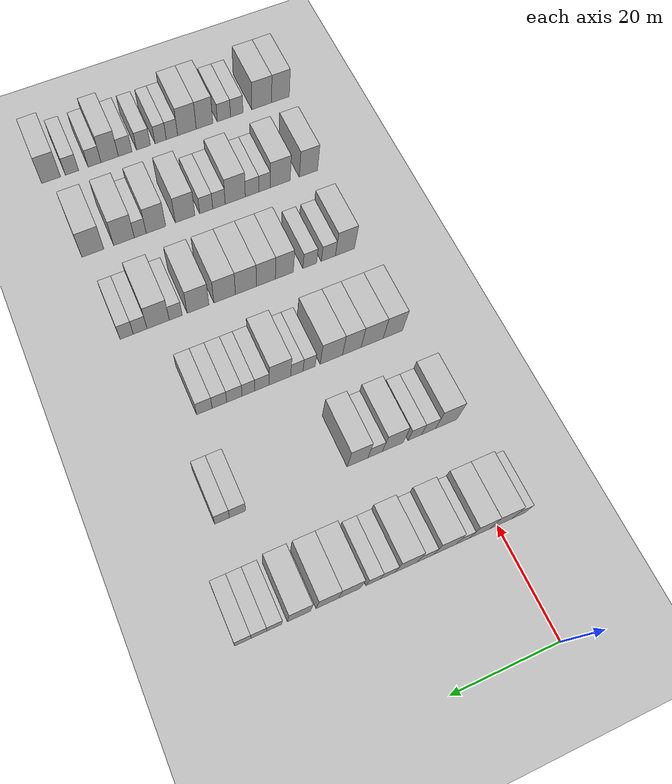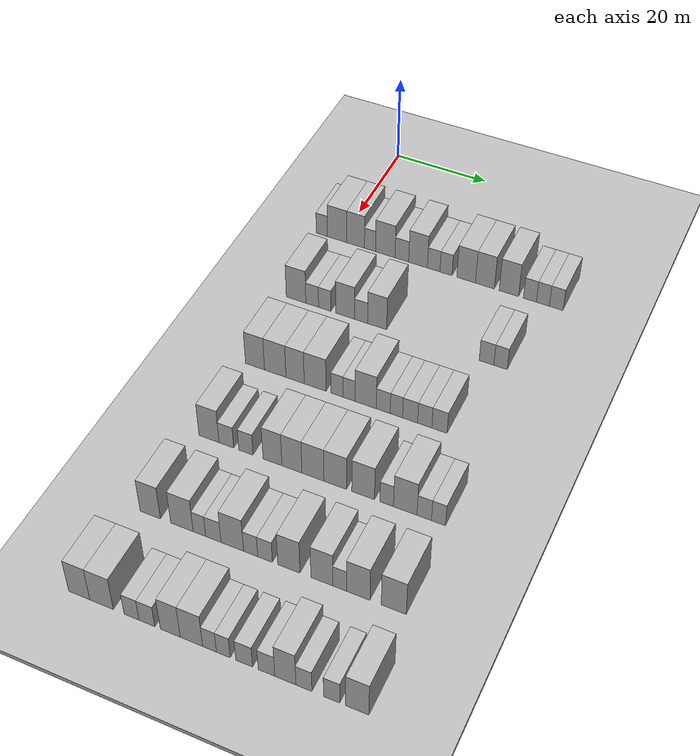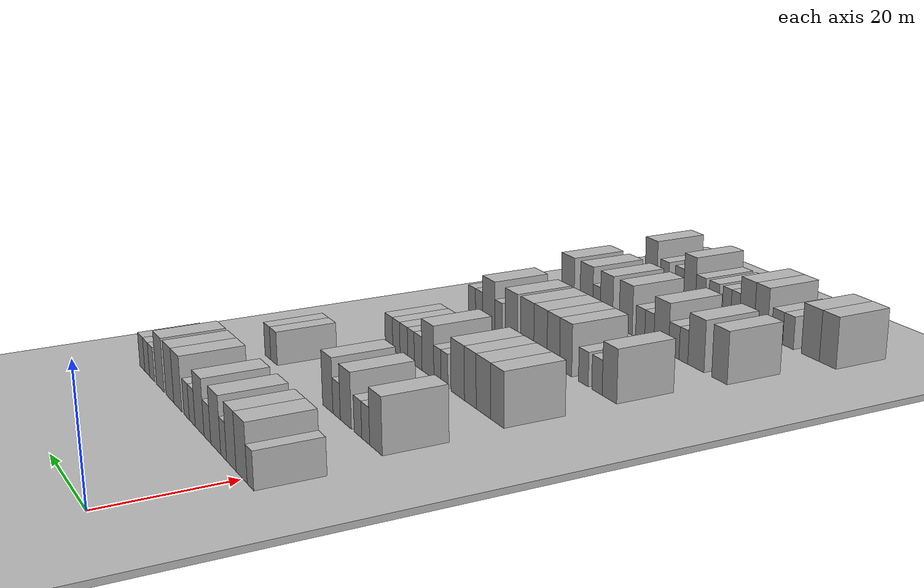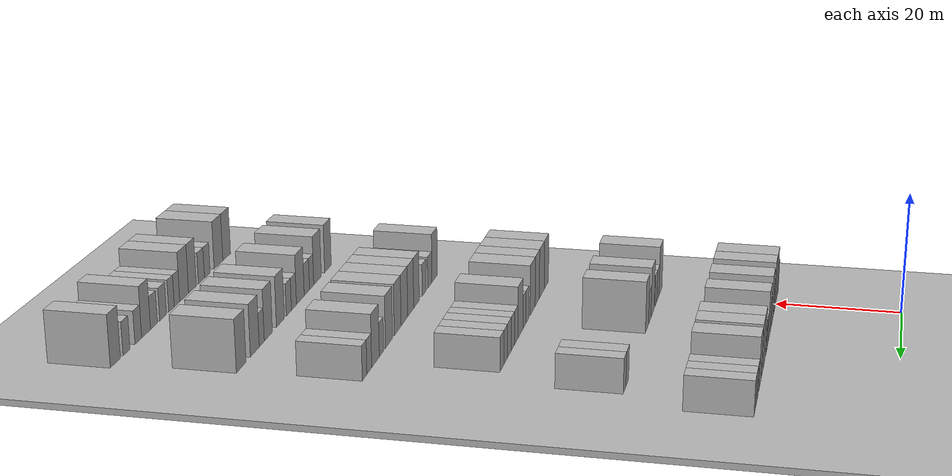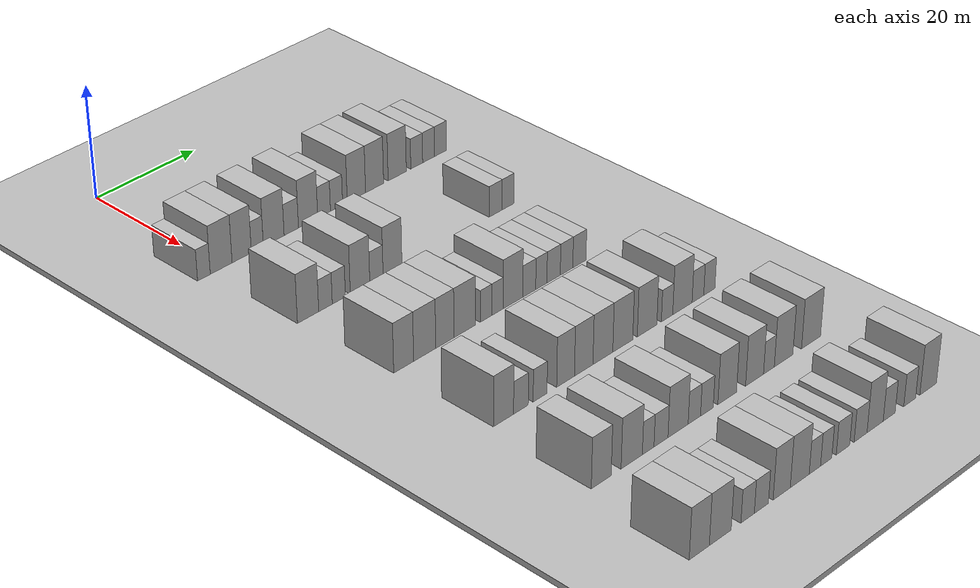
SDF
<sdf version="1.6">
 <world name="default">
  <include><name>ground_plane_1</name><uri>model://HANNAS_ground_plane</uri></include>
  <include>
   <name>ground_plane_2</name>
   <uri>model://HANNAS_ground_plane</uri>
   <pose>100 0 0  0 0 0</pose>
  </include>
  <model name="building_90">
   <static>1</static>
   <pose>25.0000 -3.9394 0 0.000000 0.000000 0.000000</pose>
   <link name="link">
    <pose>0 0 3.00 0 0 0</pose>
    <collision name="collision"><geometry><box><size>10.0000 2.5096 6.0000</size></box></geometry></collision>
    <visual name="visual">
     <cast_shadows>0</cast_shadows>
     <geometry><box><size>10.0000 2.5096 6.0000</size></box></geometry>
     <material>
      <script>
       <uri>model://HANNAS_wall/materials/scripts</uri>
       <uri>model://HANNAS_wall/materials/textures</uri>
       <name>vrc/HANNAS_wall</name>
      </script>
     </material>
    </visual>
   </link>
  </model>
  <model name="building_91">
   <static>1</static>
   <pose>25.0000 -0.5141 0 0.000000 0.000000 0.000000</pose>
   <link name="link">
    <pose>0 0 4.50 0 0 0</pose>
    <collision name="collision"><geometry><box><size>10.0000 4.3411 9.0000</size></box></geometry></collision>
    <visual name="visual">
     <cast_shadows>0</cast_shadows>
     <geometry><box><size>10.0000 4.3411 9.0000</size></box></geometry>
     <material>
      <script>
       <uri>model://HANNAS_wall/materials/scripts</uri>
       <uri>model://HANNAS_wall/materials/textures</uri>
       <name>vrc/HANNAS_wall</name>
      </script>
     </material>
    </visual>
   </link>
  </model>
  <model name="building_92">
   <static>1</static>
   <pose>25.0000 3.6046 0 0.000000 0.000000 0.000000</pose>
   <link name="link">
    <pose>0 0 4.50 0 0 0</pose>
    <collision name="collision"><geometry><box><size>10.0000 3.8961 9.0000</size></box></geometry></collision>
    <visual name="visual">
     <cast_shadows>0</cast_shadows>
     <geometry><box><size>10.0000 3.8961 9.0000</size></box></geometry>
     <material>
      <script>
       <uri>model://HANNAS_wall/materials/scripts</uri>
       <uri>model://HANNAS_wall/materials/textures</uri>
       <name>vrc/HANNAS_wall</name>
      </script>
     </material>
    </visual>
   </link>
  </model>
  <model name="building_93">
   <static>1</static>
   <pose>25.0000 6.7728 0 0.000000 0.000000 0.000000</pose>
   <link name="link">
    <pose>0 0 3.00 0 0 0</pose>
    <collision name="collision"><geometry><box><size>10.0000 2.4404 6.0000</size></box></geometry></collision>
    <visual name="visual">
     <cast_shadows>0</cast_shadows>
     <geometry><box><size>10.0000 2.4404 6.0000</size></box></geometry>
     <material>
      <script>
       <uri>model://HANNAS_wall/materials/scripts</uri>
       <uri>model://HANNAS_wall/materials/textures</uri>
       <name>vrc/HANNAS_wall</name>
      </script>
     </material>
    </visual>
   </link>
  </model>
  <model name="building_94">
   <static>1</static>
   <pose>25.0000 10.1260 0 0.000000 0.000000 0.000000</pose>
   <link name="link">
    <pose>0 0 4.50 0 0 0</pose>
    <collision name="collision"><geometry><box><size>10.0000 4.2659 9.0000</size></box></geometry></collision>
    <visual name="visual">
     <cast_shadows>0</cast_shadows>
     <geometry><box><size>10.0000 4.2659 9.0000</size></box></geometry>
     <material>
      <script>
       <uri>model://HANNAS_wall/materials/scripts</uri>
       <uri>model://HANNAS_wall/materials/textures</uri>
       <name>vrc/HANNAS_wall</name>
      </script>
     </material>
    </visual>
   </link>
  </model>
  <model name="building_95">
   <static>1</static>
   <pose>25.0000 13.7506 0 0.000000 0.000000 0.000000</pose>
   <link name="link">
    <pose>0 0 3.00 0 0 0</pose>
    <collision name="collision"><geometry><box><size>10.0000 2.9834 6.0000</size></box></geometry></collision>
    <visual name="visual">
     <cast_shadows>0</cast_shadows>
     <geometry><box><size>10.0000 2.9834 6.0000</size></box></geometry>
     <material>
      <script>
       <uri>model://HANNAS_wall/materials/scripts</uri>
       <uri>model://HANNAS_wall/materials/textures</uri>
       <name>vrc/HANNAS_wall</name>
      </script>
     </material>
    </visual>
   </link>
  </model>
  <model name="building_96">
   <static>1</static>
   <pose>25.0000 17.2656 0 0.000000 0.000000 0.000000</pose>
   <link name="link">
    <pose>0 0 4.50 0 0 0</pose>
    <collision name="collision"><geometry><box><size>10.0000 4.0464 9.0000</size></box></geometry></collision>
    <visual name="visual">
     <cast_shadows>0</cast_shadows>
     <geometry><box><size>10.0000 4.0464 9.0000</size></box></geometry>
     <material>
      <script>
       <uri>model://HANNAS_wall/materials/scripts</uri>
       <uri>model://HANNAS_wall/materials/textures</uri>
       <name>vrc/HANNAS_wall</name>
      </script>
     </material>
    </visual>
   </link>
  </model>
  <model name="building_97">
   <static>1</static>
   <pose>25.0000 20.6417 0 0.000000 0.000000 0.000000</pose>
   <link name="link">
    <pose>0 0 3.00 0 0 0</pose>
    <collision name="collision"><geometry><box><size>10.0000 2.7059 6.0000</size></box></geometry></collision>
    <visual name="visual">
     <cast_shadows>0</cast_shadows>
     <geometry><box><size>10.0000 2.7059 6.0000</size></box></geometry>
     <material>
      <script>
       <uri>model://HANNAS_wall/materials/scripts</uri>
       <uri>model://HANNAS_wall/materials/textures</uri>
       <name>vrc/HANNAS_wall</name>
      </script>
     </material>
    </visual>
   </link>
  </model>
  <model name="building_98">
   <static>1</static>
   <pose>25.0000 23.2923 0 0.000000 0.000000 0.000000</pose>
   <link name="link">
    <pose>0 0 3.00 0 0 0</pose>
    <collision name="collision"><geometry><box><size>10.0000 2.5952 6.0000</size></box></geometry></collision>
    <visual name="visual">
     <cast_shadows>0</cast_shadows>
     <geometry><box><size>10.0000 2.5952 6.0000</size></box></geometry>
     <material>
      <script>
       <uri>model://HANNAS_wall/materials/scripts</uri>
       <uri>model://HANNAS_wall/materials/textures</uri>
       <name>vrc/HANNAS_wall</name>
      </script>
     </material>
    </visual>
   </link>
  </model>
  <model name="building_99">
   <static>1</static>
   <pose>25.0000 27.5740 0 0.000000 0.000000 0.000000</pose>
   <link name="link">
    <pose>0 0 4.50 0 0 0</pose>
    <collision name="collision"><geometry><box><size>10.0000 3.9682 9.0000</size></box></geometry></collision>
    <visual name="visual">
     <cast_shadows>0</cast_shadows>
     <geometry><box><size>10.0000 3.9682 9.0000</size></box></geometry>
     <material>
      <script>
       <uri>model://HANNAS_wall/materials/scripts</uri>
       <uri>model://HANNAS_wall/materials/textures</uri>
       <name>vrc/HANNAS_wall</name>
      </script>
     </material>
    </visual>
   </link>
  </model>
  <model name="building_100">
   <static>1</static>
   <pose>25.0000 31.5337 0 0.000000 0.000000 0.000000</pose>
   <link name="link">
    <pose>0 0 4.50 0 0 0</pose>
    <collision name="collision"><geometry><box><size>10.0000 3.9510 9.0000</size></box></geometry></collision>
    <visual name="visual">
     <cast_shadows>0</cast_shadows>
     <geometry><box><size>10.0000 3.9510 9.0000</size></box></geometry>
     <material>
      <script>
       <uri>model://HANNAS_wall/materials/scripts</uri>
       <uri>model://HANNAS_wall/materials/textures</uri>
       <name>vrc/HANNAS_wall</name>
      </script>
     </material>
    </visual>
   </link>
  </model>
  <model name="building_101">
   <static>1</static>
   <pose>25.0000 36.5318 0 0.000000 0.000000 0.000000</pose>
   <link name="link">
    <pose>0 0 4.50 0 0 0</pose>
    <collision name="collision"><geometry><box><size>10.0000 4.0453 9.0000</size></box></geometry></collision>
    <visual name="visual">
     <cast_shadows>0</cast_shadows>
     <geometry><box><size>10.0000 4.0453 9.0000</size></box></geometry>
     <material>
      <script>
       <uri>model://HANNAS_wall/materials/scripts</uri>
       <uri>model://HANNAS_wall/materials/textures</uri>
       <name>vrc/HANNAS_wall</name>
      </script>
     </material>
    </visual>
   </link>
  </model>
  <model name="building_102">
   <static>1</static>
   <pose>25.0000 40.8876 0 0.000000 0.000000 0.000000</pose>
   <link name="link">
    <pose>0 0 3.00 0 0 0</pose>
    <collision name="collision"><geometry><box><size>10.0000 2.6663 6.0000</size></box></geometry></collision>
    <visual name="visual">
     <cast_shadows>0</cast_shadows>
     <geometry><box><size>10.0000 2.6663 6.0000</size></box></geometry>
     <material>
      <script>
       <uri>model://HANNAS_wall/materials/scripts</uri>
       <uri>model://HANNAS_wall/materials/textures</uri>
       <name>vrc/HANNAS_wall</name>
      </script>
     </material>
    </visual>
   </link>
  </model>
  <model name="building_103">
   <static>1</static>
   <pose>25.0000 43.5573 0 0.000000 0.000000 0.000000</pose>
   <link name="link">
    <pose>0 0 3.00 0 0 0</pose>
    <collision name="collision"><geometry><box><size>10.0000 2.6730 6.0000</size></box></geometry></collision>
    <visual name="visual">
     <cast_shadows>0</cast_shadows>
     <geometry><box><size>10.0000 2.6730 6.0000</size></box></geometry>
     <material>
      <script>
       <uri>model://HANNAS_wall/materials/scripts</uri>
       <uri>model://HANNAS_wall/materials/textures</uri>
       <name>vrc/HANNAS_wall</name>
      </script>
     </material>
    </visual>
   </link>
  </model>
  <model name="building_104">
   <static>1</static>
   <pose>25.0000 46.2851 0 0.000000 0.000000 0.000000</pose>
   <link name="link">
    <pose>0 0 3.00 0 0 0</pose>
    <collision name="collision"><geometry><box><size>10.0000 2.7826 6.0000</size></box></geometry></collision>
    <visual name="visual">
     <cast_shadows>0</cast_shadows>
     <geometry><box><size>10.0000 2.7826 6.0000</size></box></geometry>
     <material>
      <script>
       <uri>model://HANNAS_wall/materials/scripts</uri>
       <uri>model://HANNAS_wall/materials/textures</uri>
       <name>vrc/HANNAS_wall</name>
      </script>
     </material>
    </visual>
   </link>
  </model>
  <model name="building_267">
   <static>1</static>
   <pose>44.0000 -0.4500 0 0.000000 0.000000 0.000000</pose>
   <link name="link">
    <pose>0 0 4.50 0 0 0</pose>
    <collision name="collision"><geometry><box><size>10.0000 4.2329 9.0000</size></box></geometry></collision>
    <visual name="visual">
     <cast_shadows>0</cast_shadows>
     <geometry><box><size>10.0000 4.2329 9.0000</size></box></geometry>
     <material>
      <script>
       <uri>model://HANNAS_wall/materials/scripts</uri>
       <uri>model://HANNAS_wall/materials/textures</uri>
       <name>vrc/HANNAS_wall</name>
      </script>
     </material>
    </visual>
   </link>
  </model>
  <model name="building_268">
   <static>1</static>
   <pose>44.0000 3.0308 0 0.000000 0.000000 0.000000</pose>
   <link name="link">
    <pose>0 0 3.00 0 0 0</pose>
    <collision name="collision"><geometry><box><size>10.0000 2.7288 6.0000</size></box></geometry></collision>
    <visual name="visual">
     <cast_shadows>0</cast_shadows>
     <geometry><box><size>10.0000 2.7288 6.0000</size></box></geometry>
     <material>
      <script>
       <uri>model://HANNAS_wall/materials/scripts</uri>
       <uri>model://HANNAS_wall/materials/textures</uri>
       <name>vrc/HANNAS_wall</name>
      </script>
     </material>
    </visual>
   </link>
  </model>
  <model name="building_269">
   <static>1</static>
   <pose>44.0000 5.7232 0 0.000000 0.000000 0.000000</pose>
   <link name="link">
    <pose>0 0 3.00 0 0 0</pose>
    <collision name="collision"><geometry><box><size>10.0000 2.6561 6.0000</size></box></geometry></collision>
    <visual name="visual">
     <cast_shadows>0</cast_shadows>
     <geometry><box><size>10.0000 2.6561 6.0000</size></box></geometry>
     <material>
      <script>
       <uri>model://HANNAS_wall/materials/scripts</uri>
       <uri>model://HANNAS_wall/materials/textures</uri>
       <name>vrc/HANNAS_wall</name>
      </script>
     </material>
    </visual>
   </link>
  </model>
  <model name="building_270">
   <static>1</static>
   <pose>44.0000 10.0563 0 0.000000 0.000000 0.000000</pose>
   <link name="link">
    <pose>0 0 4.50 0 0 0</pose>
    <collision name="collision"><geometry><box><size>10.0000 4.0101 9.0000</size></box></geometry></collision>
    <visual name="visual">
     <cast_shadows>0</cast_shadows>
     <geometry><box><size>10.0000 4.0101 9.0000</size></box></geometry>
     <material>
      <script>
       <uri>model://HANNAS_wall/materials/scripts</uri>
       <uri>model://HANNAS_wall/materials/textures</uri>
       <name>vrc/HANNAS_wall</name>
      </script>
     </material>
    </visual>
   </link>
  </model>
  <model name="building_271">
   <static>1</static>
   <pose>44.0000 13.4441 0 0.000000 0.000000 0.000000</pose>
   <link name="link">
    <pose>0 0 3.00 0 0 0</pose>
    <collision name="collision"><geometry><box><size>10.0000 2.7656 6.0000</size></box></geometry></collision>
    <visual name="visual">
     <cast_shadows>0</cast_shadows>
     <geometry><box><size>10.0000 2.7656 6.0000</size></box></geometry>
     <material>
      <script>
       <uri>model://HANNAS_wall/materials/scripts</uri>
       <uri>model://HANNAS_wall/materials/textures</uri>
       <name>vrc/HANNAS_wall</name>
      </script>
     </material>
    </visual>
   </link>
  </model>
  <model name="building_272">
   <static>1</static>
   <pose>44.0000 16.8097 0 0.000000 0.000000 0.000000</pose>
   <link name="link">
    <pose>0 0 4.50 0 0 0</pose>
    <collision name="collision"><geometry><box><size>10.0000 3.9656 9.0000</size></box></geometry></collision>
    <visual name="visual">
     <cast_shadows>0</cast_shadows>
     <geometry><box><size>10.0000 3.9656 9.0000</size></box></geometry>
     <material>
      <script>
       <uri>model://HANNAS_wall/materials/scripts</uri>
       <uri>model://HANNAS_wall/materials/textures</uri>
       <name>vrc/HANNAS_wall</name>
      </script>
     </material>
    </visual>
   </link>
  </model>
  <model name="building_273">
   <static>1</static>
   <pose>44.0000 39.1944 0 0.000000 0.000000 0.000000</pose>
   <link name="link">
    <pose>0 0 3.00 0 0 0</pose>
    <collision name="collision"><geometry><box><size>10.0000 2.9346 6.0000</size></box></geometry></collision>
    <visual name="visual">
     <cast_shadows>0</cast_shadows>
     <geometry><box><size>10.0000 2.9346 6.0000</size></box></geometry>
     <material>
      <script>
       <uri>model://HANNAS_wall/materials/scripts</uri>
       <uri>model://HANNAS_wall/materials/textures</uri>
       <name>vrc/HANNAS_wall</name>
      </script>
     </material>
    </visual>
   </link>
  </model>
  <model name="building_274">
   <static>1</static>
   <pose>44.0000 41.9908 0 0.000000 0.000000 0.000000</pose>
   <link name="link">
    <pose>0 0 3.00 0 0 0</pose>
    <collision name="collision"><geometry><box><size>10.0000 2.6582 6.0000</size></box></geometry></collision>
    <visual name="visual">
     <cast_shadows>0</cast_shadows>
     <geometry><box><size>10.0000 2.6582 6.0000</size></box></geometry>
     <material>
      <script>
       <uri>model://HANNAS_wall/materials/scripts</uri>
       <uri>model://HANNAS_wall/materials/textures</uri>
       <name>vrc/HANNAS_wall</name>
      </script>
     </material>
    </visual>
   </link>
  </model>
  <model name="building_429">
   <static>1</static>
   <pose>63.0000 0.3392 0 0.000000 0.000000 0.000000</pose>
   <link name="link">
    <pose>0 0 4.50 0 0 0</pose>
    <collision name="collision"><geometry><box><size>10.0000 3.9727 9.0000</size></box></geometry></collision>
    <visual name="visual">
     <cast_shadows>0</cast_shadows>
     <geometry><box><size>10.0000 3.9727 9.0000</size></box></geometry>
     <material>
      <script>
       <uri>model://HANNAS_wall/materials/scripts</uri>
       <uri>model://HANNAS_wall/materials/textures</uri>
       <name>vrc/HANNAS_wall</name>
      </script>
     </material>
    </visual>
   </link>
  </model>
  <model name="building_430">
   <static>1</static>
   <pose>63.0000 4.5622 0 0.000000 0.000000 0.000000</pose>
   <link name="link">
    <pose>0 0 4.50 0 0 0</pose>
    <collision name="collision"><geometry><box><size>10.0000 4.4732 9.0000</size></box></geometry></collision>
    <visual name="visual">
     <cast_shadows>0</cast_shadows>
     <geometry><box><size>10.0000 4.4732 9.0000</size></box></geometry>
     <material>
      <script>
       <uri>model://HANNAS_wall/materials/scripts</uri>
       <uri>model://HANNAS_wall/materials/textures</uri>
       <name>vrc/HANNAS_wall</name>
      </script>
     </material>
    </visual>
   </link>
  </model>
  <model name="building_431">
   <static>1</static>
   <pose>63.0000 8.6754 0 0.000000 0.000000 0.000000</pose>
   <link name="link">
    <pose>0 0 4.50 0 0 0</pose>
    <collision name="collision"><geometry><box><size>10.0000 3.7532 9.0000</size></box></geometry></collision>
    <visual name="visual">
     <cast_shadows>0</cast_shadows>
     <geometry><box><size>10.0000 3.7532 9.0000</size></box></geometry>
     <material>
      <script>
       <uri>model://HANNAS_wall/materials/scripts</uri>
       <uri>model://HANNAS_wall/materials/textures</uri>
       <name>vrc/HANNAS_wall</name>
      </script>
     </material>
    </visual>
   </link>
  </model>
  <model name="building_432">
   <static>1</static>
   <pose>63.0000 12.7833 0 0.000000 0.000000 0.000000</pose>
   <link name="link">
    <pose>0 0 4.50 0 0 0</pose>
    <collision name="collision"><geometry><box><size>10.0000 4.4626 9.0000</size></box></geometry></collision>
    <visual name="visual">
     <cast_shadows>0</cast_shadows>
     <geometry><box><size>10.0000 4.4626 9.0000</size></box></geometry>
     <material>
      <script>
       <uri>model://HANNAS_wall/materials/scripts</uri>
       <uri>model://HANNAS_wall/materials/textures</uri>
       <name>vrc/HANNAS_wall</name>
      </script>
     </material>
    </visual>
   </link>
  </model>
  <model name="building_433">
   <static>1</static>
   <pose>63.0000 17.2202 0 0.000000 0.000000 0.000000</pose>
   <link name="link">
    <pose>0 0 3.00 0 0 0</pose>
    <collision name="collision"><geometry><box><size>10.0000 2.4111 6.0000</size></box></geometry></collision>
    <visual name="visual">
     <cast_shadows>0</cast_shadows>
     <geometry><box><size>10.0000 2.4111 6.0000</size></box></geometry>
     <material>
      <script>
       <uri>model://HANNAS_wall/materials/scripts</uri>
       <uri>model://HANNAS_wall/materials/textures</uri>
       <name>vrc/HANNAS_wall</name>
      </script>
     </material>
    </visual>
   </link>
  </model>
  <model name="building_434">
   <static>1</static>
   <pose>63.0000 19.6427 0 0.000000 0.000000 0.000000</pose>
   <link name="link">
    <pose>0 0 3.00 0 0 0</pose>
    <collision name="collision"><geometry><box><size>10.0000 2.4340 6.0000</size></box></geometry></collision>
    <visual name="visual">
     <cast_shadows>0</cast_shadows>
     <geometry><box><size>10.0000 2.4340 6.0000</size></box></geometry>
     <material>
      <script>
       <uri>model://HANNAS_wall/materials/scripts</uri>
       <uri>model://HANNAS_wall/materials/textures</uri>
       <name>vrc/HANNAS_wall</name>
      </script>
     </material>
    </visual>
   </link>
  </model>
  <model name="building_435">
   <static>1</static>
   <pose>63.0000 22.9670 0 0.000000 0.000000 0.000000</pose>
   <link name="link">
    <pose>0 0 4.50 0 0 0</pose>
    <collision name="collision"><geometry><box><size>10.0000 4.2146 9.0000</size></box></geometry></collision>
    <visual name="visual">
     <cast_shadows>0</cast_shadows>
     <geometry><box><size>10.0000 4.2146 9.0000</size></box></geometry>
     <material>
      <script>
       <uri>model://HANNAS_wall/materials/scripts</uri>
       <uri>model://HANNAS_wall/materials/textures</uri>
       <name>vrc/HANNAS_wall</name>
      </script>
     </material>
    </visual>
   </link>
  </model>
  <model name="building_436">
   <static>1</static>
   <pose>63.0000 26.4622 0 0.000000 0.000000 0.000000</pose>
   <link name="link">
    <pose>0 0 3.00 0 0 0</pose>
    <collision name="collision"><geometry><box><size>10.0000 2.7758 6.0000</size></box></geometry></collision>
    <visual name="visual">
     <cast_shadows>0</cast_shadows>
     <geometry><box><size>10.0000 2.7758 6.0000</size></box></geometry>
     <material>
      <script>
       <uri>model://HANNAS_wall/materials/scripts</uri>
       <uri>model://HANNAS_wall/materials/textures</uri>
       <name>vrc/HANNAS_wall</name>
      </script>
     </material>
    </visual>
   </link>
  </model>
  <model name="building_437">
   <static>1</static>
   <pose>63.0000 29.0745 0 0.000000 0.000000 0.000000</pose>
   <link name="link">
    <pose>0 0 3.00 0 0 0</pose>
    <collision name="collision"><geometry><box><size>10.0000 2.4488 6.0000</size></box></geometry></collision>
    <visual name="visual">
     <cast_shadows>0</cast_shadows>
     <geometry><box><size>10.0000 2.4488 6.0000</size></box></geometry>
     <material>
      <script>
       <uri>model://HANNAS_wall/materials/scripts</uri>
       <uri>model://HANNAS_wall/materials/textures</uri>
       <name>vrc/HANNAS_wall</name>
      </script>
     </material>
    </visual>
   </link>
  </model>
  <model name="building_438">
   <static>1</static>
   <pose>63.0000 31.7699 0 0.000000 0.000000 0.000000</pose>
   <link name="link">
    <pose>0 0 3.00 0 0 0</pose>
    <collision name="collision"><geometry><box><size>10.0000 2.9421 6.0000</size></box></geometry></collision>
    <visual name="visual">
     <cast_shadows>0</cast_shadows>
     <geometry><box><size>10.0000 2.9421 6.0000</size></box></geometry>
     <material>
      <script>
       <uri>model://HANNAS_wall/materials/scripts</uri>
       <uri>model://HANNAS_wall/materials/textures</uri>
       <name>vrc/HANNAS_wall</name>
      </script>
     </material>
    </visual>
   </link>
  </model>
  <model name="building_439">
   <static>1</static>
   <pose>63.0000 34.6311 0 0.000000 0.000000 0.000000</pose>
   <link name="link">
    <pose>0 0 3.00 0 0 0</pose>
    <collision name="collision"><geometry><box><size>10.0000 2.7802 6.0000</size></box></geometry></collision>
    <visual name="visual">
     <cast_shadows>0</cast_shadows>
     <geometry><box><size>10.0000 2.7802 6.0000</size></box></geometry>
     <material>
      <script>
       <uri>model://HANNAS_wall/materials/scripts</uri>
       <uri>model://HANNAS_wall/materials/textures</uri>
       <name>vrc/HANNAS_wall</name>
      </script>
     </material>
    </visual>
   </link>
  </model>
  <model name="building_440">
   <static>1</static>
   <pose>63.0000 37.4994 0 0.000000 0.000000 0.000000</pose>
   <link name="link">
    <pose>0 0 3.00 0 0 0</pose>
    <collision name="collision"><geometry><box><size>10.0000 2.9565 6.0000</size></box></geometry></collision>
    <visual name="visual">
     <cast_shadows>0</cast_shadows>
     <geometry><box><size>10.0000 2.9565 6.0000</size></box></geometry>
     <material>
      <script>
       <uri>model://HANNAS_wall/materials/scripts</uri>
       <uri>model://HANNAS_wall/materials/textures</uri>
       <name>vrc/HANNAS_wall</name>
      </script>
     </material>
    </visual>
   </link>
  </model>
  <model name="building_594">
   <static>1</static>
   <pose>82.0000 0.8963 0 0.000000 0.000000 0.000000</pose>
   <link name="link">
    <pose>0 0 4.50 0 0 0</pose>
    <collision name="collision"><geometry><box><size>10.0000 4.0358 9.0000</size></box></geometry></collision>
    <visual name="visual">
     <cast_shadows>0</cast_shadows>
     <geometry><box><size>10.0000 4.0358 9.0000</size></box></geometry>
     <material>
      <script>
       <uri>model://HANNAS_wall/materials/scripts</uri>
       <uri>model://HANNAS_wall/materials/textures</uri>
       <name>vrc/HANNAS_wall</name>
      </script>
     </material>
    </visual>
   </link>
  </model>
  <model name="building_595">
   <static>1</static>
   <pose>82.0000 4.3958 0 0.000000 0.000000 0.000000</pose>
   <link name="link">
    <pose>0 0 3.00 0 0 0</pose>
    <collision name="collision"><geometry><box><size>10.0000 2.9633 6.0000</size></box></geometry></collision>
    <visual name="visual">
     <cast_shadows>0</cast_shadows>
     <geometry><box><size>10.0000 2.9633 6.0000</size></box></geometry>
     <material>
      <script>
       <uri>model://HANNAS_wall/materials/scripts</uri>
       <uri>model://HANNAS_wall/materials/textures</uri>
       <name>vrc/HANNAS_wall</name>
      </script>
     </material>
    </visual>
   </link>
  </model>
  <model name="building_596">
   <static>1</static>
   <pose>82.0000 8.3016 0 0.000000 0.000000 0.000000</pose>
   <link name="link">
    <pose>0 0 3.00 0 0 0</pose>
    <collision name="collision"><geometry><box><size>10.0000 2.8482 6.0000</size></box></geometry></collision>
    <visual name="visual">
     <cast_shadows>0</cast_shadows>
     <geometry><box><size>10.0000 2.8482 6.0000</size></box></geometry>
     <material>
      <script>
       <uri>model://HANNAS_wall/materials/scripts</uri>
       <uri>model://HANNAS_wall/materials/textures</uri>
       <name>vrc/HANNAS_wall</name>
      </script>
     </material>
    </visual>
   </link>
  </model>
  <model name="building_597">
   <static>1</static>
   <pose>82.0000 13.5798 0 0.000000 0.000000 0.000000</pose>
   <link name="link">
    <pose>0 0 4.50 0 0 0</pose>
    <collision name="collision"><geometry><box><size>10.0000 3.7081 9.0000</size></box></geometry></collision>
    <visual name="visual">
     <cast_shadows>0</cast_shadows>
     <geometry><box><size>10.0000 3.7081 9.0000</size></box></geometry>
     <material>
      <script>
       <uri>model://HANNAS_wall/materials/scripts</uri>
       <uri>model://HANNAS_wall/materials/textures</uri>
       <name>vrc/HANNAS_wall</name>
      </script>
     </material>
    </visual>
   </link>
  </model>
  <model name="building_598">
   <static>1</static>
   <pose>82.0000 17.3865 0 0.000000 0.000000 0.000000</pose>
   <link name="link">
    <pose>0 0 4.50 0 0 0</pose>
    <collision name="collision"><geometry><box><size>10.0000 3.9053 9.0000</size></box></geometry></collision>
    <visual name="visual">
     <cast_shadows>0</cast_shadows>
     <geometry><box><size>10.0000 3.9053 9.0000</size></box></geometry>
     <material>
      <script>
       <uri>model://HANNAS_wall/materials/scripts</uri>
       <uri>model://HANNAS_wall/materials/textures</uri>
       <name>vrc/HANNAS_wall</name>
      </script>
     </material>
    </visual>
   </link>
  </model>
  <model name="building_599">
   <static>1</static>
   <pose>82.0000 21.4651 0 0.000000 0.000000 0.000000</pose>
   <link name="link">
    <pose>0 0 4.50 0 0 0</pose>
    <collision name="collision"><geometry><box><size>10.0000 4.2518 9.0000</size></box></geometry></collision>
    <visual name="visual">
     <cast_shadows>0</cast_shadows>
     <geometry><box><size>10.0000 4.2518 9.0000</size></box></geometry>
     <material>
      <script>
       <uri>model://HANNAS_wall/materials/scripts</uri>
       <uri>model://HANNAS_wall/materials/textures</uri>
       <name>vrc/HANNAS_wall</name>
      </script>
     </material>
    </visual>
   </link>
  </model>
  <model name="building_600">
   <static>1</static>
   <pose>82.0000 25.7563 0 0.000000 0.000000 0.000000</pose>
   <link name="link">
    <pose>0 0 4.50 0 0 0</pose>
    <collision name="collision"><geometry><box><size>10.0000 4.3305 9.0000</size></box></geometry></collision>
    <visual name="visual">
     <cast_shadows>0</cast_shadows>
     <geometry><box><size>10.0000 4.3305 9.0000</size></box></geometry>
     <material>
      <script>
       <uri>model://HANNAS_wall/materials/scripts</uri>
       <uri>model://HANNAS_wall/materials/textures</uri>
       <name>vrc/HANNAS_wall</name>
      </script>
     </material>
    </visual>
   </link>
  </model>
  <model name="building_601">
   <static>1</static>
   <pose>82.0000 31.0824 0 0.000000 0.000000 0.000000</pose>
   <link name="link">
    <pose>0 0 4.50 0 0 0</pose>
    <collision name="collision"><geometry><box><size>10.0000 4.3218 9.0000</size></box></geometry></collision>
    <visual name="visual">
     <cast_shadows>0</cast_shadows>
     <geometry><box><size>10.0000 4.3218 9.0000</size></box></geometry>
     <material>
      <script>
       <uri>model://HANNAS_wall/materials/scripts</uri>
       <uri>model://HANNAS_wall/materials/textures</uri>
       <name>vrc/HANNAS_wall</name>
      </script>
     </material>
    </visual>
   </link>
  </model>
  <model name="building_602">
   <static>1</static>
   <pose>82.0000 35.5159 0 0.000000 0.000000 0.000000</pose>
   <link name="link">
    <pose>0 0 3.00 0 0 0</pose>
    <collision name="collision"><geometry><box><size>10.0000 2.5453 6.0000</size></box></geometry></collision>
    <visual name="visual">
     <cast_shadows>0</cast_shadows>
     <geometry><box><size>10.0000 2.5453 6.0000</size></box></geometry>
     <material>
      <script>
       <uri>model://HANNAS_wall/materials/scripts</uri>
       <uri>model://HANNAS_wall/materials/textures</uri>
       <name>vrc/HANNAS_wall</name>
      </script>
     </material>
    </visual>
   </link>
  </model>
  <model name="building_603">
   <static>1</static>
   <pose>82.0000 38.9757 0 0.000000 0.000000 0.000000</pose>
   <link name="link">
    <pose>0 0 4.50 0 0 0</pose>
    <collision name="collision"><geometry><box><size>10.0000 4.3744 9.0000</size></box></geometry></collision>
    <visual name="visual">
     <cast_shadows>0</cast_shadows>
     <geometry><box><size>10.0000 4.3744 9.0000</size></box></geometry>
     <material>
      <script>
       <uri>model://HANNAS_wall/materials/scripts</uri>
       <uri>model://HANNAS_wall/materials/textures</uri>
       <name>vrc/HANNAS_wall</name>
      </script>
     </material>
    </visual>
   </link>
  </model>
  <model name="building_604">
   <static>1</static>
   <pose>82.0000 42.5006 0 0.000000 0.000000 0.000000</pose>
   <link name="link">
    <pose>0 0 3.00 0 0 0</pose>
    <collision name="collision"><geometry><box><size>10.0000 2.6753 6.0000</size></box></geometry></collision>
    <visual name="visual">
     <cast_shadows>0</cast_shadows>
     <geometry><box><size>10.0000 2.6753 6.0000</size></box></geometry>
     <material>
      <script>
       <uri>model://HANNAS_wall/materials/scripts</uri>
       <uri>model://HANNAS_wall/materials/textures</uri>
       <name>vrc/HANNAS_wall</name>
      </script>
     </material>
    </visual>
   </link>
  </model>
  <model name="building_605">
   <static>1</static>
   <pose>82.0000 45.1255 0 0.000000 0.000000 0.000000</pose>
   <link name="link">
    <pose>0 0 3.00 0 0 0</pose>
    <collision name="collision"><geometry><box><size>10.0000 2.5745 6.0000</size></box></geometry></collision>
    <visual name="visual">
     <cast_shadows>0</cast_shadows>
     <geometry><box><size>10.0000 2.5745 6.0000</size></box></geometry>
     <material>
      <script>
       <uri>model://HANNAS_wall/materials/scripts</uri>
       <uri>model://HANNAS_wall/materials/textures</uri>
       <name>vrc/HANNAS_wall</name>
      </script>
     </material>
    </visual>
   </link>
  </model>
  <model name="building_758">
   <static>1</static>
   <pose>101.0000 -0.1885 0 0.000000 0.000000 0.000000</pose>
   <link name="link">
    <pose>0 0 4.50 0 0 0</pose>
    <collision name="collision"><geometry><box><size>10.0000 3.9872 9.0000</size></box></geometry></collision>
    <visual name="visual">
     <cast_shadows>0</cast_shadows>
     <geometry><box><size>10.0000 3.9872 9.0000</size></box></geometry>
     <material>
      <script>
       <uri>model://HANNAS_wall/materials/scripts</uri>
       <uri>model://HANNAS_wall/materials/textures</uri>
       <name>vrc/HANNAS_wall</name>
      </script>
     </material>
    </visual>
   </link>
  </model>
  <model name="building_759">
   <static>1</static>
   <pose>101.0000 5.9792 0 0.000000 0.000000 0.000000</pose>
   <link name="link">
    <pose>0 0 4.50 0 0 0</pose>
    <collision name="collision"><geometry><box><size>10.0000 4.3482 9.0000</size></box></geometry></collision>
    <visual name="visual">
     <cast_shadows>0</cast_shadows>
     <geometry><box><size>10.0000 4.3482 9.0000</size></box></geometry>
     <material>
      <script>
       <uri>model://HANNAS_wall/materials/scripts</uri>
       <uri>model://HANNAS_wall/materials/textures</uri>
       <name>vrc/HANNAS_wall</name>
      </script>
     </material>
    </visual>
   </link>
  </model>
  <model name="building_760">
   <static>1</static>
   <pose>101.0000 9.3595 0 0.000000 0.000000 0.000000</pose>
   <link name="link">
    <pose>0 0 3.00 0 0 0</pose>
    <collision name="collision"><geometry><box><size>10.0000 2.4124 6.0000</size></box></geometry></collision>
    <visual name="visual">
     <cast_shadows>0</cast_shadows>
     <geometry><box><size>10.0000 2.4124 6.0000</size></box></geometry>
     <material>
      <script>
       <uri>model://HANNAS_wall/materials/scripts</uri>
       <uri>model://HANNAS_wall/materials/textures</uri>
       <name>vrc/HANNAS_wall</name>
      </script>
     </material>
    </visual>
   </link>
  </model>
  <model name="building_761">
   <static>1</static>
   <pose>101.0000 12.0286 0 0.000000 0.000000 0.000000</pose>
   <link name="link">
    <pose>0 0 3.00 0 0 0</pose>
    <collision name="collision"><geometry><box><size>10.0000 2.9258 6.0000</size></box></geometry></collision>
    <visual name="visual">
     <cast_shadows>0</cast_shadows>
     <geometry><box><size>10.0000 2.9258 6.0000</size></box></geometry>
     <material>
      <script>
       <uri>model://HANNAS_wall/materials/scripts</uri>
       <uri>model://HANNAS_wall/materials/textures</uri>
       <name>vrc/HANNAS_wall</name>
      </script>
     </material>
    </visual>
   </link>
  </model>
  <model name="building_762">
   <static>1</static>
   <pose>101.0000 15.6227 0 0.000000 0.000000 0.000000</pose>
   <link name="link">
    <pose>0 0 4.50 0 0 0</pose>
    <collision name="collision"><geometry><box><size>10.0000 4.2626 9.0000</size></box></geometry></collision>
    <visual name="visual">
     <cast_shadows>0</cast_shadows>
     <geometry><box><size>10.0000 4.2626 9.0000</size></box></geometry>
     <material>
      <script>
       <uri>model://HANNAS_wall/materials/scripts</uri>
       <uri>model://HANNAS_wall/materials/textures</uri>
       <name>vrc/HANNAS_wall</name>
      </script>
     </material>
    </visual>
   </link>
  </model>
  <model name="building_763">
   <static>1</static>
   <pose>101.0000 19.0796 0 0.000000 0.000000 0.000000</pose>
   <link name="link">
    <pose>0 0 3.00 0 0 0</pose>
    <collision name="collision"><geometry><box><size>10.0000 2.6511 6.0000</size></box></geometry></collision>
    <visual name="visual">
     <cast_shadows>0</cast_shadows>
     <geometry><box><size>10.0000 2.6511 6.0000</size></box></geometry>
     <material>
      <script>
       <uri>model://HANNAS_wall/materials/scripts</uri>
       <uri>model://HANNAS_wall/materials/textures</uri>
       <name>vrc/HANNAS_wall</name>
      </script>
     </material>
    </visual>
   </link>
  </model>
  <model name="building_764">
   <static>1</static>
   <pose>101.0000 21.7763 0 0.000000 0.000000 0.000000</pose>
   <link name="link">
    <pose>0 0 3.00 0 0 0</pose>
    <collision name="collision"><geometry><box><size>10.0000 2.7425 6.0000</size></box></geometry></collision>
    <visual name="visual">
     <cast_shadows>0</cast_shadows>
     <geometry><box><size>10.0000 2.7425 6.0000</size></box></geometry>
     <material>
      <script>
       <uri>model://HANNAS_wall/materials/scripts</uri>
       <uri>model://HANNAS_wall/materials/textures</uri>
       <name>vrc/HANNAS_wall</name>
      </script>
     </material>
    </visual>
   </link>
  </model>
  <model name="building_765">
   <static>1</static>
   <pose>101.0000 26.1923 0 0.000000 0.000000 0.000000</pose>
   <link name="link">
    <pose>0 0 4.50 0 0 0</pose>
    <collision name="collision"><geometry><box><size>10.0000 4.0895 9.0000</size></box></geometry></collision>
    <visual name="visual">
     <cast_shadows>0</cast_shadows>
     <geometry><box><size>10.0000 4.0895 9.0000</size></box></geometry>
     <material>
      <script>
       <uri>model://HANNAS_wall/materials/scripts</uri>
       <uri>model://HANNAS_wall/materials/textures</uri>
       <name>vrc/HANNAS_wall</name>
      </script>
     </material>
    </visual>
   </link>
  </model>
  <model name="building_766">
   <static>1</static>
   <pose>101.0000 32.2390 0 0.000000 0.000000 0.000000</pose>
   <link name="link">
    <pose>0 0 4.50 0 0 0</pose>
    <collision name="collision"><geometry><box><size>10.0000 4.0038 9.0000</size></box></geometry></collision>
    <visual name="visual">
     <cast_shadows>0</cast_shadows>
     <geometry><box><size>10.0000 4.0038 9.0000</size></box></geometry>
     <material>
      <script>
       <uri>model://HANNAS_wall/materials/scripts</uri>
       <uri>model://HANNAS_wall/materials/textures</uri>
       <name>vrc/HANNAS_wall</name>
      </script>
     </material>
    </visual>
   </link>
  </model>
  <model name="building_767">
   <static>1</static>
   <pose>101.0000 35.4578 0 0.000000 0.000000 0.000000</pose>
   <link name="link">
    <pose>0 0 3.00 0 0 0</pose>
    <collision name="collision"><geometry><box><size>10.0000 2.4338 6.0000</size></box></geometry></collision>
    <visual name="visual">
     <cast_shadows>0</cast_shadows>
     <geometry><box><size>10.0000 2.4338 6.0000</size></box></geometry>
     <material>
      <script>
       <uri>model://HANNAS_wall/materials/scripts</uri>
       <uri>model://HANNAS_wall/materials/textures</uri>
       <name>vrc/HANNAS_wall</name>
      </script>
     </material>
    </visual>
   </link>
  </model>
  <model name="building_768">
   <static>1</static>
   <pose>101.0000 38.7908 0 0.000000 0.000000 0.000000</pose>
   <link name="link">
    <pose>0 0 4.50 0 0 0</pose>
    <collision name="collision"><geometry><box><size>10.0000 4.2323 9.0000</size></box></geometry></collision>
    <visual name="visual">
     <cast_shadows>0</cast_shadows>
     <geometry><box><size>10.0000 4.2323 9.0000</size></box></geometry>
     <material>
      <script>
       <uri>model://HANNAS_wall/materials/scripts</uri>
       <uri>model://HANNAS_wall/materials/textures</uri>
       <name>vrc/HANNAS_wall</name>
      </script>
     </material>
    </visual>
   </link>
  </model>
  <model name="building_769">
   <static>1</static>
   <pose>101.0000 45.1147 0 0.000000 0.000000 0.000000</pose>
   <link name="link">
    <pose>0 0 4.50 0 0 0</pose>
    <collision name="collision"><geometry><box><size>10.0000 4.4154 9.0000</size></box></geometry></collision>
    <visual name="visual">
     <cast_shadows>0</cast_shadows>
     <geometry><box><size>10.0000 4.4154 9.0000</size></box></geometry>
     <material>
      <script>
       <uri>model://HANNAS_wall/materials/scripts</uri>
       <uri>model://HANNAS_wall/materials/textures</uri>
       <name>vrc/HANNAS_wall</name>
      </script>
     </material>
    </visual>
   </link>
  </model>
  <model name="building_934">
   <static>1</static>
   <pose>120.0000 -2.5365 0 0.000000 0.000000 0.000000</pose>
   <link name="link">
    <pose>0 0 4.50 0 0 0</pose>
    <collision name="collision"><geometry><box><size>10.0000 4.0214 9.0000</size></box></geometry></collision>
    <visual name="visual">
     <cast_shadows>0</cast_shadows>
     <geometry><box><size>10.0000 4.0214 9.0000</size></box></geometry>
     <material>
      <script>
       <uri>model://HANNAS_wall/materials/scripts</uri>
       <uri>model://HANNAS_wall/materials/textures</uri>
       <name>vrc/HANNAS_wall</name>
      </script>
     </material>
    </visual>
   </link>
  </model>
  <model name="building_935">
   <static>1</static>
   <pose>120.0000 1.6965 0 0.000000 0.000000 0.000000</pose>
   <link name="link">
    <pose>0 0 4.50 0 0 0</pose>
    <collision name="collision"><geometry><box><size>10.0000 4.4446 9.0000</size></box></geometry></collision>
    <visual name="visual">
     <cast_shadows>0</cast_shadows>
     <geometry><box><size>10.0000 4.4446 9.0000</size></box></geometry>
     <material>
      <script>
       <uri>model://HANNAS_wall/materials/scripts</uri>
       <uri>model://HANNAS_wall/materials/textures</uri>
       <name>vrc/HANNAS_wall</name>
      </script>
     </material>
    </visual>
   </link>
  </model>
  <model name="building_936">
   <static>1</static>
   <pose>120.0000 7.3071 0 0.000000 0.000000 0.000000</pose>
   <link name="link">
    <pose>0 0 3.00 0 0 0</pose>
    <collision name="collision"><geometry><box><size>10.0000 2.7768 6.0000</size></box></geometry></collision>
    <visual name="visual">
     <cast_shadows>0</cast_shadows>
     <geometry><box><size>10.0000 2.7768 6.0000</size></box></geometry>
     <material>
      <script>
       <uri>model://HANNAS_wall/materials/scripts</uri>
       <uri>model://HANNAS_wall/materials/textures</uri>
       <name>vrc/HANNAS_wall</name>
      </script>
     </material>
    </visual>
   </link>
  </model>
  <model name="building_937">
   <static>1</static>
   <pose>120.0000 10.1650 0 0.000000 0.000000 0.000000</pose>
   <link name="link">
    <pose>0 0 3.00 0 0 0</pose>
    <collision name="collision"><geometry><box><size>10.0000 2.9391 6.0000</size></box></geometry></collision>
    <visual name="visual">
     <cast_shadows>0</cast_shadows>
     <geometry><box><size>10.0000 2.9391 6.0000</size></box></geometry>
     <material>
      <script>
       <uri>model://HANNAS_wall/materials/scripts</uri>
       <uri>model://HANNAS_wall/materials/textures</uri>
       <name>vrc/HANNAS_wall</name>
      </script>
     </material>
    </visual>
   </link>
  </model>
  <model name="building_938">
   <static>1</static>
   <pose>120.0000 14.4546 0 0.000000 0.000000 0.000000</pose>
   <link name="link">
    <pose>0 0 4.50 0 0 0</pose>
    <collision name="collision"><geometry><box><size>10.0000 3.6401 9.0000</size></box></geometry></collision>
    <visual name="visual">
     <cast_shadows>0</cast_shadows>
     <geometry><box><size>10.0000 3.6401 9.0000</size></box></geometry>
     <material>
      <script>
       <uri>model://HANNAS_wall/materials/scripts</uri>
       <uri>model://HANNAS_wall/materials/textures</uri>
       <name>vrc/HANNAS_wall</name>
      </script>
     </material>
    </visual>
   </link>
  </model>
  <model name="building_939">
   <static>1</static>
   <pose>120.0000 18.3102 0 0.000000 0.000000 0.000000</pose>
   <link name="link">
    <pose>0 0 4.50 0 0 0</pose>
    <collision name="collision"><geometry><box><size>10.0000 4.0711 9.0000</size></box></geometry></collision>
    <visual name="visual">
     <cast_shadows>0</cast_shadows>
     <geometry><box><size>10.0000 4.0711 9.0000</size></box></geometry>
     <material>
      <script>
       <uri>model://HANNAS_wall/materials/scripts</uri>
       <uri>model://HANNAS_wall/materials/textures</uri>
       <name>vrc/HANNAS_wall</name>
      </script>
     </material>
    </visual>
   </link>
  </model>
  <model name="building_940">
   <static>1</static>
   <pose>120.0000 21.5826 0 0.000000 0.000000 0.000000</pose>
   <link name="link">
    <pose>0 0 3.00 0 0 0</pose>
    <collision name="collision"><geometry><box><size>10.0000 2.4736 6.0000</size></box></geometry></collision>
    <visual name="visual">
     <cast_shadows>0</cast_shadows>
     <geometry><box><size>10.0000 2.4736 6.0000</size></box></geometry>
     <material>
      <script>
       <uri>model://HANNAS_wall/materials/scripts</uri>
       <uri>model://HANNAS_wall/materials/textures</uri>
       <name>vrc/HANNAS_wall</name>
      </script>
     </material>
    </visual>
   </link>
  </model>
  <model name="building_941">
   <static>1</static>
   <pose>120.0000 24.0489 0 0.000000 0.000000 0.000000</pose>
   <link name="link">
    <pose>0 0 3.00 0 0 0</pose>
    <collision name="collision"><geometry><box><size>10.0000 2.4590 6.0000</size></box></geometry></collision>
    <visual name="visual">
     <cast_shadows>0</cast_shadows>
     <geometry><box><size>10.0000 2.4590 6.0000</size></box></geometry>
     <material>
      <script>
       <uri>model://HANNAS_wall/materials/scripts</uri>
       <uri>model://HANNAS_wall/materials/textures</uri>
       <name>vrc/HANNAS_wall</name>
      </script>
     </material>
    </visual>
   </link>
  </model>
  <model name="building_942">
   <static>1</static>
   <pose>120.0000 27.7637 0 0.000000 0.000000 0.000000</pose>
   <link name="link">
    <pose>0 0 3.00 0 0 0</pose>
    <collision name="collision"><geometry><box><size>10.0000 2.9706 6.0000</size></box></geometry></collision>
    <visual name="visual">
     <cast_shadows>0</cast_shadows>
     <geometry><box><size>10.0000 2.9706 6.0000</size></box></geometry>
     <material>
      <script>
       <uri>model://HANNAS_wall/materials/scripts</uri>
       <uri>model://HANNAS_wall/materials/textures</uri>
       <name>vrc/HANNAS_wall</name>
      </script>
     </material>
    </visual>
   </link>
  </model>
  <model name="building_943">
   <static>1</static>
   <pose>120.0000 31.7002 0 0.000000 0.000000 0.000000</pose>
   <link name="link">
    <pose>0 0 3.00 0 0 0</pose>
    <collision name="collision"><geometry><box><size>10.0000 2.9026 6.0000</size></box></geometry></collision>
    <visual name="visual">
     <cast_shadows>0</cast_shadows>
     <geometry><box><size>10.0000 2.9026 6.0000</size></box></geometry>
     <material>
      <script>
       <uri>model://HANNAS_wall/materials/scripts</uri>
       <uri>model://HANNAS_wall/materials/textures</uri>
       <name>vrc/HANNAS_wall</name>
      </script>
     </material>
    </visual>
   </link>
  </model>
  <model name="building_944">
   <static>1</static>
   <pose>120.0000 34.9885 0 0.000000 0.000000 0.000000</pose>
   <link name="link">
    <pose>0 0 4.50 0 0 0</pose>
    <collision name="collision"><geometry><box><size>10.0000 3.6739 9.0000</size></box></geometry></collision>
    <visual name="visual">
     <cast_shadows>0</cast_shadows>
     <geometry><box><size>10.0000 3.6739 9.0000</size></box></geometry>
     <material>
      <script>
       <uri>model://HANNAS_wall/materials/scripts</uri>
       <uri>model://HANNAS_wall/materials/textures</uri>
       <name>vrc/HANNAS_wall</name>
      </script>
     </material>
    </visual>
   </link>
  </model>
  <model name="building_945">
   <static>1</static>
   <pose>120.0000 38.2010 0 0.000000 0.000000 0.000000</pose>
   <link name="link">
    <pose>0 0 3.00 0 0 0</pose>
    <collision name="collision"><geometry><box><size>10.0000 2.7511 6.0000</size></box></geometry></collision>
    <visual name="visual">
     <cast_shadows>0</cast_shadows>
     <geometry><box><size>10.0000 2.7511 6.0000</size></box></geometry>
     <material>
      <script>
       <uri>model://HANNAS_wall/materials/scripts</uri>
       <uri>model://HANNAS_wall/materials/textures</uri>
       <name>vrc/HANNAS_wall</name>
      </script>
     </material>
    </visual>
   </link>
  </model>
  <model name="building_946">
   <static>1</static>
   <pose>120.0000 42.9586 0 0.000000 0.000000 0.000000</pose>
   <link name="link">
    <pose>0 0 3.00 0 0 0</pose>
    <collision name="collision"><geometry><box><size>10.0000 2.7641 6.0000</size></box></geometry></collision>
    <visual name="visual">
     <cast_shadows>0</cast_shadows>
     <geometry><box><size>10.0000 2.7641 6.0000</size></box></geometry>
     <material>
      <script>
       <uri>model://HANNAS_wall/materials/scripts</uri>
       <uri>model://HANNAS_wall/materials/textures</uri>
       <name>vrc/HANNAS_wall</name>
      </script>
     </material>
    </visual>
   </link>
  </model>
  <model name="building_947">
   <static>1</static>
   <pose>120.0000 47.3025 0 0.000000 0.000000 0.000000</pose>
   <link name="link">
    <pose>0 0 4.50 0 0 0</pose>
    <collision name="collision"><geometry><box><size>10.0000 3.9237 9.0000</size></box></geometry></collision>
    <visual name="visual">
     <cast_shadows>0</cast_shadows>
     <geometry><box><size>10.0000 3.9237 9.0000</size></box></geometry>
     <material>
      <script>
       <uri>model://HANNAS_wall/materials/scripts</uri>
       <uri>model://HANNAS_wall/materials/textures</uri>
       <name>vrc/HANNAS_wall</name>
      </script>
     </material>
    </visual>
   </link>
  </model>
 </world>
</sdf>
